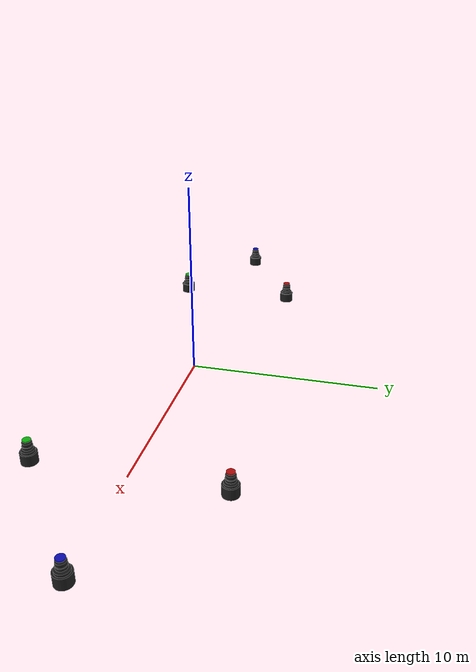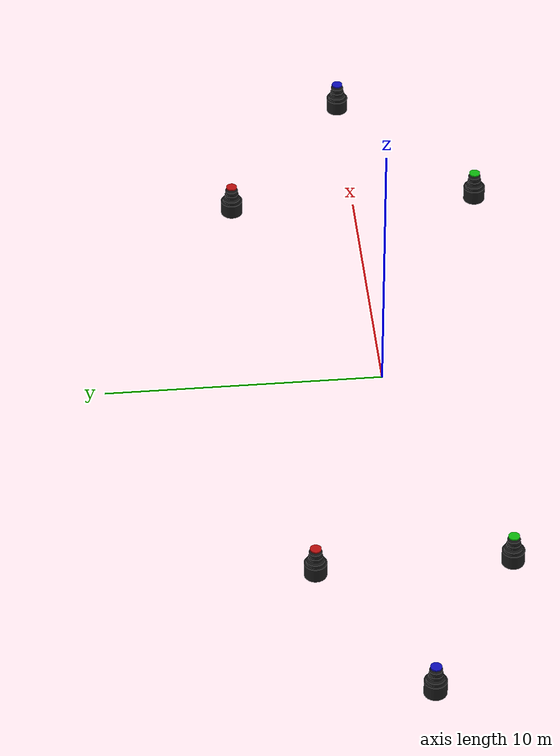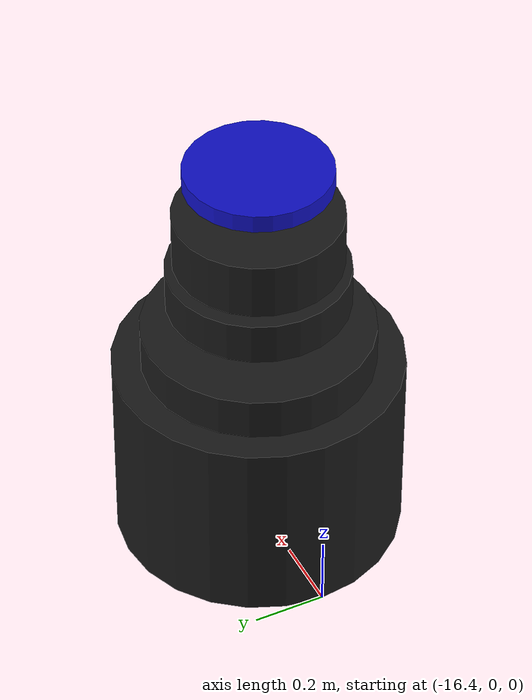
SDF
<?xml version="1.0"?>
<sdf version="1.10">
  <world name="robotx_task1_uav_view">
    <gravity>0 0 -9.81</gravity>

    <physics name="physics" type="ode">
      <max_step_size>0.002</max_step_size>
      <real_time_factor>1.0</real_time_factor>
    </physics>

    <scene>
      <ambient>0.22 0.20 0.18 1.0</ambient>
      <background>0.74 0.55 0.44 1.0</background>
      <shadows>true</shadows>
      <grid>false</grid>
    </scene>

    <light name="sun" type="directional">
      <cast_shadows>true</cast_shadows>
      <pose>0 0 300 0 0 0</pose>
      <diffuse>0.95 0.74 0.56 1.0</diffuse>
      <specular>1.00 0.87 0.71 1.0</specular>
      <direction>-0.40 0.20 -0.88</direction>
      <attenuation>
        <range>2500</range>
        <constant>0.85</constant>
        <linear>0.001</linear>
        <quadratic>0.00005</quadratic>
      </attenuation>
    </light>

    <plugin filename="gz-sim-physics-system" name="gz::sim::systems::Physics"/>
    <plugin filename="gz-sim-user-commands-system" name="gz::sim::systems::UserCommands"/>
    <plugin filename="gz-sim-scene-broadcaster-system" name="gz::sim::systems::SceneBroadcaster"/>
    <plugin filename="gz-sim-sensors-system" name="gz::sim::systems::Sensors">
      <render_engine>ogre2</render_engine>
    </plugin>

    <include>
      <uri>model://regular_waves</uri>
      <name>robotx_ocean</name>
      <pose>0 0 0 0 0 0</pose>
    </include>

    <include>
      <uri>model://robotx_buoy_red_led</uri>
      <name>safe_passage_red_1</name>
      <pose>-10.000 3.400 0.0 0 0 0</pose>
    </include>
    <include>
      <uri>model://robotx_buoy_green_led</uri>
      <name>safe_passage_green_1</name>
      <pose>-10.000 -3.400 0.0 0 0 0</pose>
    </include>
    <include>
      <uri>model://robotx_buoy_red_led</uri>
      <name>safe_passage_red_2</name>
      <pose>10.000 4.600 0.0 0 0 0</pose>
    </include>
    <include>
      <uri>model://robotx_buoy_green_led</uri>
      <name>safe_passage_green_2</name>
      <pose>10.000 -4.600 0.0 0 0 0</pose>
    </include>
    <include>
      <uri>model://robotx_buoy_blue_led</uri>
      <name>start_marker_blue</name>
      <pose>-16.000 0.000 0.0 0 0 0</pose>
    </include>
    <include>
      <uri>model://robotx_buoy_blue_led</uri>
      <name>end_marker_blue</name>
      <pose>16.000 0.000 0.0 0 0 0</pose>
    </include>

    <model name="uav_dataset_camera">
      <static>true</static>
      <pose>0 0 26 0 0 0</pose>
      <link name="camera_link">
        <sensor name="top_down_rgb" type="camera">
          <always_on>true</always_on>
          <update_rate>20</update_rate>
          <pose>0 0 0 0 1.57079632679 0</pose>
          <camera>
            <horizontal_fov>1.05</horizontal_fov>
            <image>
              <width>1920</width>
              <height>1080</height>
              <format>R8G8B8</format>
            </image>
            <clip>
              <near>0.2</near>
              <far>600</far>
            </clip>
          </camera>
          <topic>/robotx/uav/camera/image_raw</topic>
          <visualize>true</visualize>
        </sensor>
      </link>
    </model>
  </world>
</sdf>

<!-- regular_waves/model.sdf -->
<sdf version="1.6">
  <model name="regular_waves">
    <static>true</static>

    <plugin
        filename="gz-waves1-waves-model-system"
        name="gz::sim::systems::WavesModel">
      <static>0</static>
      <update_rate>30</update_rate>
      <wave>
        <tile_size>1024</tile_size>
        <cell_count>128</cell_count>

        <algorithm>sinusoid</algorithm>
        <amplitude>1.0</amplitude>
        <period>6.0</period>
        <direction>1 0</direction>
      </wave>
    </plugin>
    <plugin
      filename="LoggingSystem"
      name="logging_system::LoggingSystem">
    </plugin>

    <link name="base_link">
      <visual name="visual">
        <transparency>1</transparency>
        <geometry>
          <mesh>
            <uri>models://waves/materials/mesh_L256m_N256.dae</uri>
          </mesh>
        </geometry>
        <material>
          <ambient>0.0 0.05 0.8 0.92</ambient>
          <diffuse>0.0 0.1 0.7 0.35</diffuse>
          <specular>0.7 0.7 0.7 0.92</specular>

          <pbr>
            <metal>
              <albedo_map>models://waves/materials/water.jpg</albedo_map>
              <normal_map>models://waves/materials/wave_normals.dds</normal_map>
              <environment_map>models://waves/materials/skybox_lowres.dds</environment_map>
              <roughness>0.3</roughness>
              <metalness>0.1</metalness>
            </metal>
          </pbr>

        <double_sided>
        1
        </double_sided>
        </material>

        <plugin
            filename="gz-waves1-waves-visual-system"
            name="gz::sim::systems::WavesVisual">
          <static>0</static>
          <mesh_deformation_method>DYNAMIC_GEOMETRY</mesh_deformation_method>
          <tiles_x>-0 0</tiles_x>
          <tiles_y>-0 0</tiles_y>
          <wave>
            <tile_size>1024</tile_size>
            <cell_count>128</cell_count>

            <algorithm>sinusoid</algorithm>
            <amplitude>1.0</amplitude>
            <period>6.0</period>
            <direction>1 0</direction>
          </wave>

          <!-- TODO: should not be required if using PBS shader -->
          <shader language="metal">
            <vertex>models://waves/materials/waves_vs.metal</vertex>
            <fragment>models://waves/materials/waves_fs.metal</fragment>
          </shader>

        </plugin>
      </visual>
    </link>
  </model>
</sdf>

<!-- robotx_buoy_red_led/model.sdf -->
<sdf version="1.10">
  <model name="robotx_buoy_red_led">
    <static>false</static>
    <pose>0 0 0 0 0 0</pose>
    <!-- Controlled bobbing for stable, realistic motion without toppling -->
    <plugin filename="librobotx_bobbing_plugin.dylib" name="robotx::BobbingPlugin">
      <amplitude_z_m>0.03</amplitude_z_m>
      <frequency_hz>0.18</frequency_hz>
      <drift_xy_m>0.02</drift_xy_m>
      <drift_frequency_hz>0.025</drift_frequency_hz>
      <roll_deg>0.4</roll_deg>
      <pitch_deg>0.5</pitch_deg>
      <phase_rad>0.0</phase_rad>
    </plugin>
    <link name="body_link">
      <gravity>false</gravity>
      <enable_wind>false</enable_wind>
      <collision name="body_collision_lower">
        <pose>0 0 0.28 0 0 0</pose>
        <geometry>
          <cylinder>
            <radius>0.40</radius>
            <length>0.56</length>
          </cylinder>
        </geometry>
      </collision>
      <collision name="body_collision_mid">
        <pose>0 0 0.62 0 0 0</pose>
        <geometry>
          <cylinder>
            <radius>0.32</radius>
            <length>0.12</length>
          </cylinder>
        </geometry>
      </collision>
      <collision name="body_collision_upper">
        <pose>0 0 0.82 0 0 0</pose>
        <geometry>
          <cylinder>
            <radius>0.25</radius>
            <length>0.12</length>
          </cylinder>
        </geometry>
      </collision>
      <collision name="body_collision_collar">
        <pose>0 0 0.98 0 0 0</pose>
        <geometry>
          <cylinder>
            <radius>0.23</radius>
            <length>0.16</length>
          </cylinder>
        </geometry>
      </collision>

      <visual name="body_visual_lower">
        <pose>0 0 0.28 0 0 0</pose>
        <geometry>
          <cylinder>
            <radius>0.40</radius>
            <length>0.56</length>
          </cylinder>
        </geometry>
        <material>
          <ambient>0.05 0.05 0.05 1</ambient>
          <diffuse>0.10 0.10 0.10 1</diffuse>
          <specular>0.20 0.20 0.20 1</specular>
        </material>
      </visual>
      <visual name="body_visual_mid">
        <pose>0 0 0.62 0 0 0</pose>
        <geometry>
          <cylinder>
            <radius>0.32</radius>
            <length>0.12</length>
          </cylinder>
        </geometry>
        <material>
          <ambient>0.05 0.05 0.05 1</ambient>
          <diffuse>0.10 0.10 0.10 1</diffuse>
          <specular>0.20 0.20 0.20 1</specular>
        </material>
      </visual>
      <visual name="body_visual_upper">
        <pose>0 0 0.82 0 0 0</pose>
        <geometry>
          <cylinder>
            <radius>0.25</radius>
            <length>0.12</length>
          </cylinder>
        </geometry>
        <material>
          <ambient>0.05 0.05 0.05 1</ambient>
          <diffuse>0.10 0.10 0.10 1</diffuse>
          <specular>0.20 0.20 0.20 1</specular>
        </material>
      </visual>
      <visual name="body_visual_collar">
        <pose>0 0 0.98 0 0 0</pose>
        <geometry>
          <cylinder>
            <radius>0.23</radius>
            <length>0.16</length>
          </cylinder>
        </geometry>
        <material>
          <ambient>0.05 0.05 0.05 1</ambient>
          <diffuse>0.10 0.10 0.10 1</diffuse>
          <specular>0.20 0.20 0.20 1</specular>
        </material>
      </visual>

      <visual name="beacon_cap">
        <pose>0 0 1.18 0 0 0</pose>
        <geometry>
          <cylinder>
            <radius>0.20</radius>
            <length>0.05</length>
          </cylinder>
        </geometry>
        <material>
          <ambient>0.22 0.02 0.02 1</ambient>
          <diffuse>0.78 0.06 0.06 1</diffuse>
          <emissive>1.00 0.12 0.12 1</emissive>
        </material>
      </visual>
      <light name="top_beacon" type="spot">
        <pose>0 0 1.21 0 0 0</pose>
        <cast_shadows>false</cast_shadows>
        <diffuse>1 0 0 1</diffuse>
        <specular>0.4 0.0 0.0 1</specular>
        <attenuation>
          <range>55</range>
          <constant>0.20</constant>
          <linear>0.02</linear>
          <quadratic>0.0015</quadratic>
        </attenuation>
        <direction>0 0 1</direction>
        <spot>
          <inner_angle>0.16</inner_angle>
          <outer_angle>0.30</outer_angle>
          <falloff>1.4</falloff>
        </spot>
      </light>
    </link>
  </model>
</sdf>

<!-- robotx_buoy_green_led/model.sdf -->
<sdf version="1.10">
  <model name="robotx_buoy_green_led">
    <static>false</static>
    <pose>0 0 0 0 0 0</pose>
    <!-- Controlled bobbing for stable, realistic motion without toppling -->
    <plugin filename="librobotx_bobbing_plugin.dylib" name="robotx::BobbingPlugin">
      <amplitude_z_m>0.03</amplitude_z_m>
      <frequency_hz>0.18</frequency_hz>
      <drift_xy_m>0.02</drift_xy_m>
      <drift_frequency_hz>0.025</drift_frequency_hz>
      <roll_deg>0.4</roll_deg>
      <pitch_deg>0.5</pitch_deg>
      <phase_rad>2.1</phase_rad>
    </plugin>
    <link name="body_link">
      <gravity>false</gravity>
      <enable_wind>false</enable_wind>
      <collision name="body_collision_lower">
        <pose>0 0 0.28 0 0 0</pose>
        <geometry>
          <cylinder>
            <radius>0.40</radius>
            <length>0.56</length>
          </cylinder>
        </geometry>
      </collision>
      <collision name="body_collision_mid">
        <pose>0 0 0.62 0 0 0</pose>
        <geometry>
          <cylinder>
            <radius>0.32</radius>
            <length>0.12</length>
          </cylinder>
        </geometry>
      </collision>
      <collision name="body_collision_upper">
        <pose>0 0 0.82 0 0 0</pose>
        <geometry>
          <cylinder>
            <radius>0.25</radius>
            <length>0.12</length>
          </cylinder>
        </geometry>
      </collision>
      <collision name="body_collision_collar">
        <pose>0 0 0.98 0 0 0</pose>
        <geometry>
          <cylinder>
            <radius>0.23</radius>
            <length>0.16</length>
          </cylinder>
        </geometry>
      </collision>

      <visual name="body_visual_lower">
        <pose>0 0 0.28 0 0 0</pose>
        <geometry>
          <cylinder>
            <radius>0.40</radius>
            <length>0.56</length>
          </cylinder>
        </geometry>
        <material>
          <ambient>0.05 0.05 0.05 1</ambient>
          <diffuse>0.10 0.10 0.10 1</diffuse>
          <specular>0.20 0.20 0.20 1</specular>
        </material>
      </visual>
      <visual name="body_visual_mid">
        <pose>0 0 0.62 0 0 0</pose>
        <geometry>
          <cylinder>
            <radius>0.32</radius>
            <length>0.12</length>
          </cylinder>
        </geometry>
        <material>
          <ambient>0.05 0.05 0.05 1</ambient>
          <diffuse>0.10 0.10 0.10 1</diffuse>
          <specular>0.20 0.20 0.20 1</specular>
        </material>
      </visual>
      <visual name="body_visual_upper">
        <pose>0 0 0.82 0 0 0</pose>
        <geometry>
          <cylinder>
            <radius>0.25</radius>
            <length>0.12</length>
          </cylinder>
        </geometry>
        <material>
          <ambient>0.05 0.05 0.05 1</ambient>
          <diffuse>0.10 0.10 0.10 1</diffuse>
          <specular>0.20 0.20 0.20 1</specular>
        </material>
      </visual>
      <visual name="body_visual_collar">
        <pose>0 0 0.98 0 0 0</pose>
        <geometry>
          <cylinder>
            <radius>0.23</radius>
            <length>0.16</length>
          </cylinder>
        </geometry>
        <material>
          <ambient>0.05 0.05 0.05 1</ambient>
          <diffuse>0.10 0.10 0.10 1</diffuse>
          <specular>0.20 0.20 0.20 1</specular>
        </material>
      </visual>

      <visual name="beacon_cap">
        <pose>0 0 1.18 0 0 0</pose>
        <geometry>
          <cylinder>
            <radius>0.20</radius>
            <length>0.05</length>
          </cylinder>
        </geometry>
        <material>
          <ambient>0.02 0.22 0.02 1</ambient>
          <diffuse>0.06 0.78 0.06 1</diffuse>
          <emissive>0.12 1.00 0.12 1</emissive>
        </material>
      </visual>
      <light name="top_beacon" type="spot">
        <pose>0 0 1.21 0 0 0</pose>
        <cast_shadows>false</cast_shadows>
        <diffuse>0 1 0 1</diffuse>
        <specular>0.0 0.4 0.0 1</specular>
        <attenuation>
          <range>55</range>
          <constant>0.20</constant>
          <linear>0.02</linear>
          <quadratic>0.0015</quadratic>
        </attenuation>
        <direction>0 0 1</direction>
        <spot>
          <inner_angle>0.16</inner_angle>
          <outer_angle>0.30</outer_angle>
          <falloff>1.4</falloff>
        </spot>
      </light>
    </link>
  </model>
</sdf>

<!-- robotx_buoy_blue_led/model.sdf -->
<sdf version="1.10">
  <model name="robotx_buoy_blue_led">
    <static>false</static>
    <pose>0 0 0 0 0 0</pose>
    <!-- Controlled bobbing for stable, realistic motion without toppling -->
    <plugin filename="librobotx_bobbing_plugin.dylib" name="robotx::BobbingPlugin">
      <amplitude_z_m>0.03</amplitude_z_m>
      <frequency_hz>0.18</frequency_hz>
      <drift_xy_m>0.02</drift_xy_m>
      <drift_frequency_hz>0.025</drift_frequency_hz>
      <roll_deg>0.4</roll_deg>
      <pitch_deg>0.5</pitch_deg>
      <phase_rad>4.2</phase_rad>
    </plugin>
    <link name="body_link">
      <gravity>false</gravity>
      <enable_wind>false</enable_wind>
      <collision name="body_collision_lower">
        <pose>0 0 0.28 0 0 0</pose>
        <geometry>
          <cylinder>
            <radius>0.40</radius>
            <length>0.56</length>
          </cylinder>
        </geometry>
      </collision>
      <collision name="body_collision_mid">
        <pose>0 0 0.62 0 0 0</pose>
        <geometry>
          <cylinder>
            <radius>0.32</radius>
            <length>0.12</length>
          </cylinder>
        </geometry>
      </collision>
      <collision name="body_collision_upper">
        <pose>0 0 0.82 0 0 0</pose>
        <geometry>
          <cylinder>
            <radius>0.25</radius>
            <length>0.12</length>
          </cylinder>
        </geometry>
      </collision>
      <collision name="body_collision_collar">
        <pose>0 0 0.98 0 0 0</pose>
        <geometry>
          <cylinder>
            <radius>0.23</radius>
            <length>0.16</length>
          </cylinder>
        </geometry>
      </collision>

      <visual name="body_visual_lower">
        <pose>0 0 0.28 0 0 0</pose>
        <geometry>
          <cylinder>
            <radius>0.40</radius>
            <length>0.56</length>
          </cylinder>
        </geometry>
        <material>
          <ambient>0.05 0.05 0.05 1</ambient>
          <diffuse>0.10 0.10 0.10 1</diffuse>
          <specular>0.20 0.20 0.20 1</specular>
        </material>
      </visual>
      <visual name="body_visual_mid">
        <pose>0 0 0.62 0 0 0</pose>
        <geometry>
          <cylinder>
            <radius>0.32</radius>
            <length>0.12</length>
          </cylinder>
        </geometry>
        <material>
          <ambient>0.05 0.05 0.05 1</ambient>
          <diffuse>0.10 0.10 0.10 1</diffuse>
          <specular>0.20 0.20 0.20 1</specular>
        </material>
      </visual>
      <visual name="body_visual_upper">
        <pose>0 0 0.82 0 0 0</pose>
        <geometry>
          <cylinder>
            <radius>0.25</radius>
            <length>0.12</length>
          </cylinder>
        </geometry>
        <material>
          <ambient>0.05 0.05 0.05 1</ambient>
          <diffuse>0.10 0.10 0.10 1</diffuse>
          <specular>0.20 0.20 0.20 1</specular>
        </material>
      </visual>
      <visual name="body_visual_collar">
        <pose>0 0 0.98 0 0 0</pose>
        <geometry>
          <cylinder>
            <radius>0.23</radius>
            <length>0.16</length>
          </cylinder>
        </geometry>
        <material>
          <ambient>0.05 0.05 0.05 1</ambient>
          <diffuse>0.10 0.10 0.10 1</diffuse>
          <specular>0.20 0.20 0.20 1</specular>
        </material>
      </visual>

      <visual name="beacon_cap">
        <pose>0 0 1.18 0 0 0</pose>
        <geometry>
          <cylinder>
            <radius>0.20</radius>
            <length>0.05</length>
          </cylinder>
        </geometry>
        <material>
          <ambient>0.02 0.02 0.22 1</ambient>
          <diffuse>0.06 0.06 0.78 1</diffuse>
          <emissive>0.12 0.12 1.00 1</emissive>
        </material>
      </visual>
      <light name="top_beacon" type="spot">
        <pose>0 0 1.21 0 0 0</pose>
        <cast_shadows>false</cast_shadows>
        <diffuse>0 0 1 1</diffuse>
        <specular>0.0 0.0 0.4 1</specular>
        <attenuation>
          <range>55</range>
          <constant>0.20</constant>
          <linear>0.02</linear>
          <quadratic>0.0015</quadratic>
        </attenuation>
        <direction>0 0 1</direction>
        <spot>
          <inner_angle>0.16</inner_angle>
          <outer_angle>0.30</outer_angle>
          <falloff>1.4</falloff>
        </spot>
      </light>
    </link>
  </model>
</sdf>
